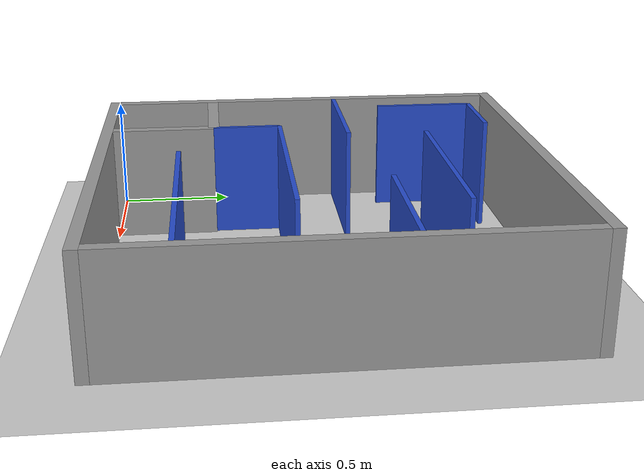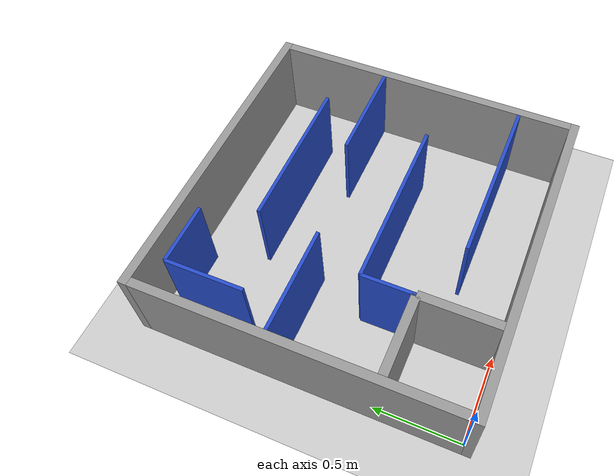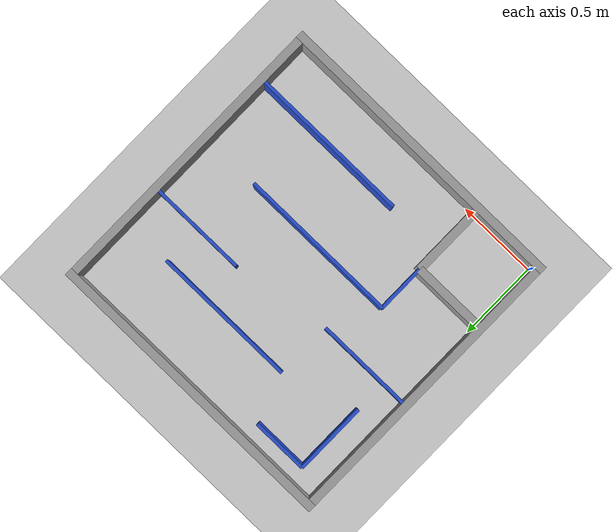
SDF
<sdf version="1.6">
  <world name="maze">
    <include>
      <uri>model://sun</uri>
    </include>
    <include>
      <uri>model://ground_plane</uri>
    </include>

    <plugin name="gazebo_ros_state" filename="libgazebo_ros_state.so">
      <ros>
        <namespace>/</namespace>
      </ros>
    </plugin>

    <model name='wall_bottom'>
      <pose frame=''>0.9 -0.025 0.25 0 -0 0</pose>
      <link name='link'>

        <collision name='collision'>
          <geometry>
            <box>
              <size>1.9000000000000001 0.05 0.5</size>
            </box>
          </geometry>
        </collision>
        <visual name='visual'>
          <geometry>
            <box>
              <size>1.9000000000000001 0.05 0.5</size>
            </box>
          </geometry>
          <material>
            <script>
              <uri>file://media/materials/scripts/gazebo.material</uri>
              <name>Gazebo/Grey</name>
            </script>
          </material>
        </visual>
      </link>
      <static>1</static>
    </model>
    <model name='wall_top'>
      <pose frame=''>0.9 1.825 0.25 0 -0 0</pose>
      <link name='link'>

        <collision name='collision'>
          <geometry>
            <box>
              <size>1.9000000000000001 0.05 0.5</size>
            </box>
          </geometry>
        </collision>
        <visual name='visual'>
          <geometry>
            <box>
              <size>1.9000000000000001 0.05 0.5</size>
            </box>
          </geometry>
          <material>
            <script>
              <uri>file://media/materials/scripts/gazebo.material</uri>
              <name>Gazebo/Grey</name>
            </script>
          </material>
        </visual>
      </link>
      <static>1</static>
    </model>
    <model name='wall_left'>
      <pose frame=''>-0.025 0.9 0.25 0 -0 0</pose>
      <link name='link'>

        <collision name='collision'>
          <geometry>
            <box>
              <size>0.05 1.8 0.5</size>
            </box>
          </geometry>
        </collision>
        <visual name='visual'>
          <geometry>
            <box>
              <size>0.05 1.8 0.5</size>
            </box>
          </geometry>
          <material>
            <script>
              <uri>file://media/materials/scripts/gazebo.material</uri>
              <name>Gazebo/Grey</name>
            </script>
          </material>
        </visual>
      </link>
      <static>1</static>
    </model>
    <model name='wall_right'>
      <pose frame=''>1.825 0.9 0.25 0 -0 0</pose>
      <link name='link'>

        <collision name='collision'>
          <geometry>
            <box>
              <size>0.05 1.8 0.5</size>
            </box>
          </geometry>
        </collision>
        <visual name='visual'>
          <geometry>
            <box>
              <size>0.05 1.8 0.5</size>
            </box>
          </geometry>
          <material>
            <script>
              <uri>file://media/materials/scripts/gazebo.material</uri>
              <name>Gazebo/Grey</name>
            </script>
          </material>
        </visual>
      </link>
      <static>1</static>
    </model>
    <model name='wall_GF'>
      <pose frame=''>0.45 0.225 0.25 0 -0 0</pose>
      <link name='link'>

        <collision name='collision'>
          <geometry>
            <box>
              <size>0.05 0.45 0.5</size>
            </box>
          </geometry>
        </collision>
        <visual name='visual'>
          <geometry>
            <box>
              <size>0.05 0.45 0.5</size>
            </box>
          </geometry>
          <material>
            <script>
              <uri>file://media/materials/scripts/gazebo.material</uri>
              <name>Gazebo/Grey</name>
            </script>
          </material>
        </visual>
      </link>
      <static>1</static>
    </model>
    <model name='wall_FE'>
      <pose frame=''>0.225 0.45 0.25 0 -0 0</pose>
      <link name='link'>

        <collision name='collision'>
          <geometry>
            <box>
              <size>0.45 0.05 0.5</size>
            </box>
          </geometry>
        </collision>
        <visual name='visual'>
          <geometry>
            <box>
              <size>0.45 0.05 0.5</size>
            </box>
          </geometry>
          <material>
            <script>
              <uri>file://media/materials/scripts/gazebo.material</uri>
              <name>Gazebo/Grey</name>
            </script>
          </material>
        </visual>
      </link>
      <static>1</static>
    </model>
    <model name='soft_LM'>
      <pose frame=''>1.3 0.3 0.25 0 -0 0</pose>
      <link name='link'>
        <collision name='collision'>
          <geometry>
            <box>
              <size>1.0 0.02 0.5</size>
            </box>
          </geometry>
        </collision>
        <visual name='visual'>
          <geometry>
            <box>
              <size>1.0 0.02 0.5</size>
            </box>
          </geometry>
          <material>
            <script>
              <uri>file://media/materials/scripts/gazebo.material</uri>
              <name>Gazebo/Blue</name>
            </script>
          </material>
        </visual>
      </link>
      <static>1</static>
    </model>

    <model name='soft_M1F'>
      <pose frame=''>0.45 0.6 0.25 0 -0 0</pose>
      <link name='link'>
        <collision name='collision'>
          <geometry>
            <box>
              <size>0.02 0.3 0.5</size>
            </box>
          </geometry>
        </collision>
        <visual name='visual'>
          <geometry>
            <box>
              <size>0.02 0.3 0.5</size>
            </box>
          </geometry>
          <material>
            <script>
              <uri>file://media/materials/scripts/gazebo.material</uri>
              <name>Gazebo/Blue</name>
            </script>
          </material>
        </visual>
      </link>
      <static>1</static>
    </model>

    <model name='soft_M1L1'>
      <pose frame=''>0.95 0.75 0.25 0 -0 0</pose>
      <link name='link'>
        <collision name='collision'>
          <geometry>
            <box>
              <size>1.0 0.02 0.5</size>
            </box>
          </geometry>
        </collision>
        <visual name='visual'>
          <geometry>
            <box>
              <size>1.0 0.02 0.5</size>
            </box>
          </geometry>
          <material>
            <script>
              <uri>file://media/materials/scripts/gazebo.material</uri>
              <name>Gazebo/Blue</name>
            </script>
          </material>
        </visual>
      </link>
      <static>1</static>
    </model>

    <model name='soft_KN'>
      <pose frame=''>0.3 1.05 0.25 0 -0 0</pose>
      <link name='link'>
        <collision name='collision'>
          <geometry>
            <box>
              <size>0.6 0.02 0.5</size>
            </box>
          </geometry>
        </collision>
        <visual name='visual'>
          <geometry>
            <box>
              <size>0.6 0.02 0.5</size>
            </box>
          </geometry>
          <material>
            <script>
              <uri>file://media/materials/scripts/gazebo.material</uri>
              <name>Gazebo/Blue</name>
            </script>
          </material>
        </visual>
      </link>
      <static>1</static>
    </model>

    <model name='soft_N1K1'>
      <pose frame=''>1.5 1.15 0.25 0 -0 0</pose>
      <link name='link'>
        <collision name='collision'>
          <geometry>
            <box>
              <size>0.6 0.02 0.5</size>
            </box>
          </geometry>
        </collision>
        <visual name='visual'>
          <geometry>
            <box>
              <size>0.6 0.02 0.5</size>
            </box>
          </geometry>
          <material>
            <script>
              <uri>file://media/materials/scripts/gazebo.material</uri>
              <name>Gazebo/Blue</name>
            </script>
          </material>
        </visual>
      </link>
      <static>1</static>
    </model>

    <model name='soft_IH'>
      <pose frame=''>1.05 1.4 0.25 0 -0 0</pose>
      <link name='link'>
        <collision name='collision'>
          <geometry>
            <box>
              <size>0.9 0.02 0.5</size>
            </box>
          </geometry>
        </collision>
        <visual name='visual'>
          <geometry>
            <box>
              <size>0.9 0.02 0.5</size>
            </box>
          </geometry>
          <material>
            <script>
              <uri>file://media/materials/scripts/gazebo.material</uri>
              <name>Gazebo/Blue</name>
            </script>
          </material>
        </visual>
      </link>
      <static>1</static>
    </model>

    <model name='soft_TS'>
      <pose frame=''>0.15 1.475 0.25 0 -0 0</pose>
      <link name='link'>
        <collision name='collision'>
          <geometry>
            <box>
              <size>0.02 0.45 0.5</size>
            </box>
          </geometry>
        </collision>
        <visual name='visual'>
          <geometry>
            <box>
              <size>0.02 0.45 0.5</size>
            </box>
          </geometry>
          <material>
            <script>
              <uri>file://media/materials/scripts/gazebo.material</uri>
              <name>Gazebo/Blue</name>
            </script>
          </material>
        </visual>
      </link>
      <static>1</static>
    </model>

    <model name='soft_SR'>
      <pose frame=''>0.325 1.7 0.25 0 -0 0</pose>
      <link name='link'>
        <collision name='collision'>
          <geometry>
            <box>
              <size>0.35 0.02 0.5</size>
            </box>
          </geometry>
        </collision>
        <visual name='visual'>
          <geometry>
            <box>
              <size>0.35 0.02 0.5</size>
            </box>
          </geometry>
          <material>
            <script>
              <uri>file://media/materials/scripts/gazebo.material</uri>
              <name>Gazebo/Blue</name>
            </script>
          </material>
        </visual>
      </link>
      <static>1</static>
    </model>

    <gui fullscreen='0'>
      <camera name='user_camera'>
        <pose frame=''>0.9 0.9 5.0 0 1.570796 1.570796</pose>
        <view_controller>orbit</view_controller>
        <projection_type>perspective</projection_type>
      </camera>
    </gui>
  </world>
</sdf>
